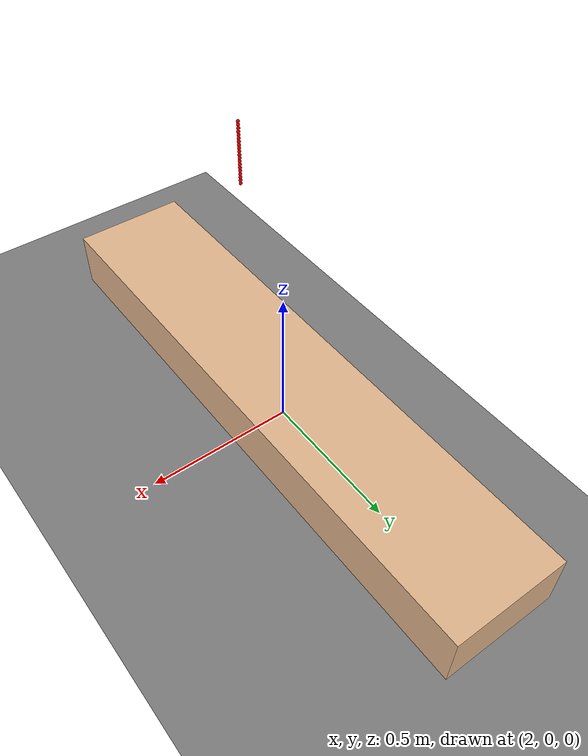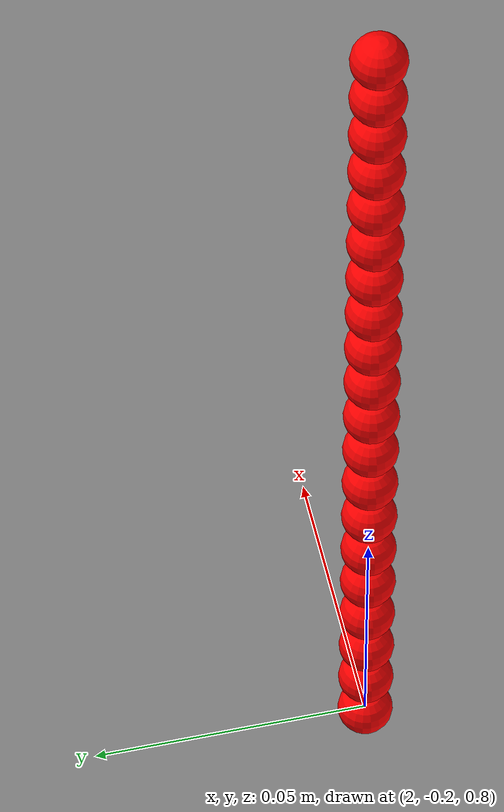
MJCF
<mujoco>
	<compiler/>
	<option timestep="0.002" integrator="RK4" solver="CG" gravity="0 0 -9.81">
		<flag contact="enable"/>
	</option>

  <default>
        <geom condim="4" solimp="0.99 0.99 0" solref="0.01 1" friction="1 0.005 0.0001"/>
    </default>

	<asset>
        <texture type="skybox" builtin="gradient" rgb1="1 1 1" rgb2=".6 .8 1" width="256" height="256"/>
		<texture name="grid" type="2d" builtin="checker" width="112" height="112" rgb1="0 0 0" rgb2="1 1 1" />
		<material name="grid" texture="grid" texrepeat="1 1" texuniform="true" reflectance=".2" />
	</asset>

	<worldbody>
		<geom name="floor" size="0 0 .05" type="plane" material="grid" condim="3" />
		<light diffuse="1 1 1" pos="0 0 5" dir="0 0 -1" />
		<light diffuse="1 1 1" pos="2 -1 5" dir="0 0 -1" />
		<light diffuse="1 1 1" pos="1 1 5" dir="0 0 -1" />
	</worldbody>

	<worldbody>
		<body name="table" pos="2 0 0.1">
			<geom name="table_geom" type="box" size="0.2 1 0.1" rgba=".89 0.72 .56 1"/>
		</body>

	</worldbody>

	<worldbody>
		<body name="sync_ball0" pos="2 -0.2 0.8">
			<freejoint/><inertial pos="0.0 0.0 0.0" mass="0.0001" diaginertia="0.000000001 0.000000001 0.000000001" />
			<geom type="sphere" size="0.005" rgba="1 0 0 1"/>
		</body>
		<body name="sync_ball1" pos="2 -0.2 0.81">
			<freejoint/> <inertial pos="0.0 0.0 0.0" mass="0.0001" diaginertia="0.000000001 0.000000001 0.000000001" />
			<geom type="sphere" size="0.005" rgba="1 0 0 1"/>
		</body>
		<body name="sync_ball2" pos="2 -0.2 0.8200000000000001">
			<freejoint/> <inertial pos="0.0 0.0 0.0" mass="0.0001" diaginertia="0.000000001 0.000000001 0.000000001" />
			<geom type="sphere" size="0.005" rgba="1 0 0 1"/>
		</body>
		<body name="sync_ball3" pos="2 -0.2 0.8300000000000001">
			<freejoint/> <inertial pos="0.0 0.0 0.0" mass="0.0001" diaginertia="0.000000001 0.000000001 0.000000001" />
			<geom type="sphere" size="0.005" rgba="1 0 0 1"/>
		</body>
		<body name="sync_ball4" pos="2 -0.2 0.8400000000000001">
			<freejoint/> <inertial pos="0.0 0.0 0.0" mass="0.0001" diaginertia="0.000000001 0.000000001 0.000000001" />
			<geom type="sphere" size="0.005" rgba="1 0 0 1"/>
		</body>
		<body name="sync_ball5" pos="2 -0.2 0.8500000000000001">
			<freejoint/> <inertial pos="0.0 0.0 0.0" mass="0.0001" diaginertia="0.000000001 0.000000001 0.000000001" />
			<geom type="sphere" size="0.005" rgba="1 0 0 1"/>
		</body>
		<body name="sync_ball6" pos="2 -0.2 0.8600000000000001">
			<freejoint/> <inertial pos="0.0 0.0 0.0" mass="0.0001" diaginertia="0.000000001 0.000000001 0.000000001" />
			<geom type="sphere" size="0.005" rgba="1 0 0 1"/>
		</body>
		<body name="sync_ball7" pos="2 -0.2 0.8700000000000001">
			<freejoint/> <inertial pos="0.0 0.0 0.0" mass="0.0001" diaginertia="0.000000001 0.000000001 0.000000001" />
			<geom type="sphere" size="0.005" rgba="1 0 0 1"/>
		</body>
		<body name="sync_ball8" pos="2 -0.2 0.88">
			<freejoint/> <inertial pos="0.0 0.0 0.0" mass="0.0001" diaginertia="0.000000001 0.000000001 0.000000001" />
			<geom type="sphere" size="0.005" rgba="1 0 0 1"/>
		</body>
		<body name="sync_ball9" pos="2 -0.2 0.89">
			<freejoint/> <inertial pos="0.0 0.0 0.0" mass="0.0001" diaginertia="0.000000001 0.000000001 0.000000001" />
			<geom type="sphere" size="0.005" rgba="1 0 0 1"/>
		</body>
		<body name="sync_ball10" pos="2 -0.2 0.9">
			<freejoint/> <inertial pos="0.0 0.0 0.0" mass="0.0001" diaginertia="0.000000001 0.000000001 0.000000001" />
			<geom type="sphere" size="0.005" rgba="1 0 0 1"/>
		</body>
		<body name="sync_ball11" pos="2 -0.2 0.91">
			<freejoint/> <inertial pos="0.0 0.0 0.0" mass="0.0001" diaginertia="0.000000001 0.000000001 0.000000001" />
			<geom type="sphere" size="0.005" rgba="1 0 0 1"/>
		</body>
		<body name="sync_ball12" pos="2 -0.2 0.92">
			<freejoint/> <inertial pos="0.0 0.0 0.0" mass="0.0001" diaginertia="0.000000001 0.000000001 0.000000001" />
			<geom type="sphere" size="0.005" rgba="1 0 0 1"/>
		</body>
		<body name="sync_ball13" pos="2 -0.2 0.93">
			<freejoint/> <inertial pos="0.0 0.0 0.0" mass="0.0001" diaginertia="0.000000001 0.000000001 0.000000001" />
			<geom type="sphere" size="0.005" rgba="1 0 0 1"/>
		</body>
		<body name="sync_ball14" pos="2 -0.2 0.9400000000000001">
			<freejoint/> <inertial pos="0.0 0.0 0.0" mass="0.0001" diaginertia="0.000000001 0.000000001 0.000000001" />
			<geom type="sphere" size="0.005" rgba="1 0 0 1"/>
		</body>
		<body name="sync_ball15" pos="2 -0.2 0.9500000000000001">
			<freejoint/> <inertial pos="0.0 0.0 0.0" mass="0.0001" diaginertia="0.000000001 0.000000001 0.000000001" />
			<geom type="sphere" size="0.005" rgba="1 0 0 1"/>
		</body>
		<body name="sync_ball16" pos="2 -0.2 0.9600000000000001">
			<freejoint/> <inertial pos="0.0 0.0 0.0" mass="0.0001" diaginertia="0.000000001 0.000000001 0.000000001" />
			<geom type="sphere" size="0.005" rgba="1 0 0 1"/>
		</body>
		<body name="sync_ball17" pos="2 -0.2 0.9700000000000001">
			<freejoint/> <inertial pos="0.0 0.0 0.0" mass="0.0001" diaginertia="0.000000001 0.000000001 0.000000001" />
			<geom type="sphere" size="0.005" rgba="1 0 0 1"/>
		</body>
		<body name="sync_ball18" pos="2 -0.2 0.98">
			<freejoint/> <inertial pos="0.0 0.0 0.0" mass="0.0001" diaginertia="0.000000001 0.000000001 0.000000001" />
			<geom type="sphere" size="0.005" rgba="1 0 0 1"/>
		</body>
		<body name="sync_ball19" pos="2 -0.2 0.99">
			<freejoint/> <inertial pos="0.0 0.0 0.0" mass="0.0001" diaginertia="0.000000001 0.000000001 0.000000001" />
			<geom type="sphere" size="0.005" rgba="1 0 0 1"/>
		</body>

	</worldbody>

</mujoco>
